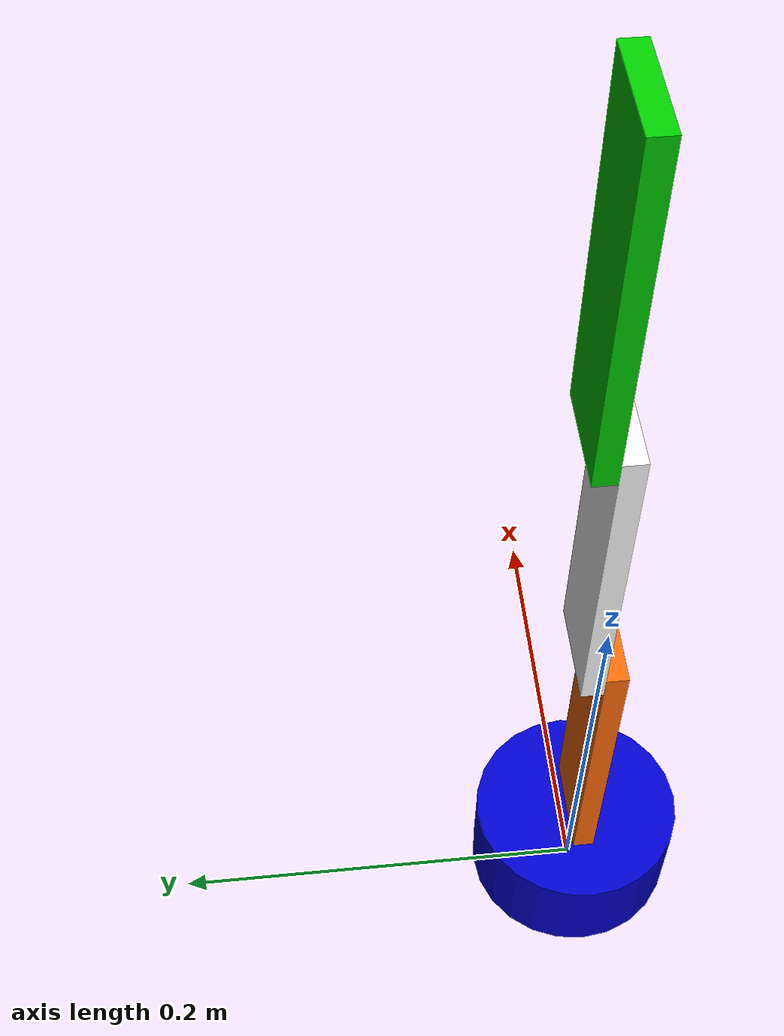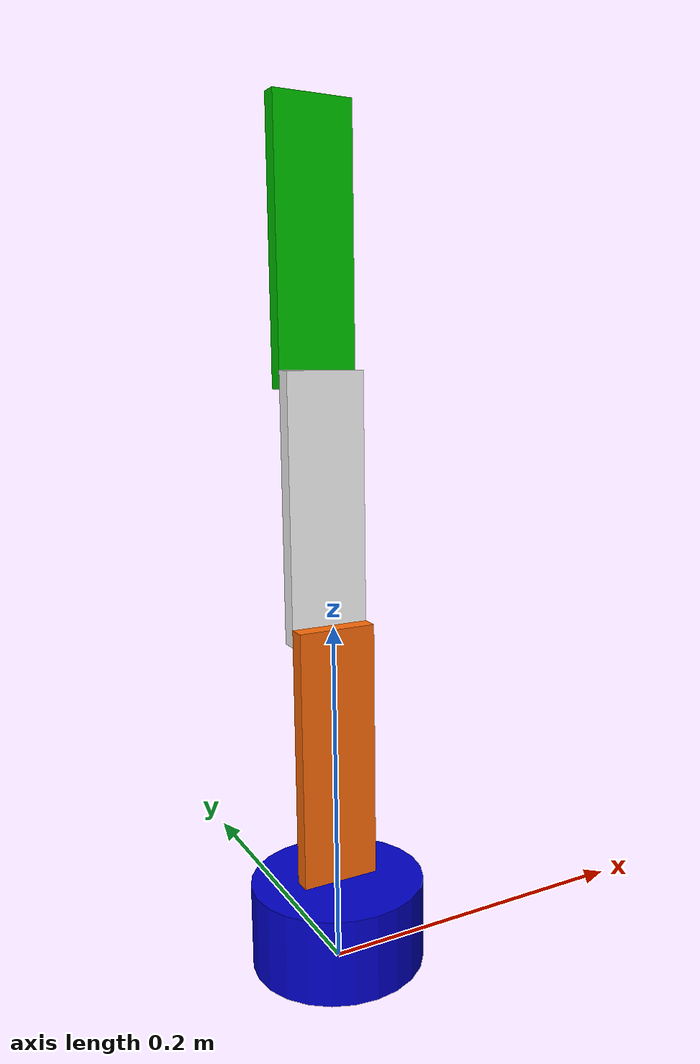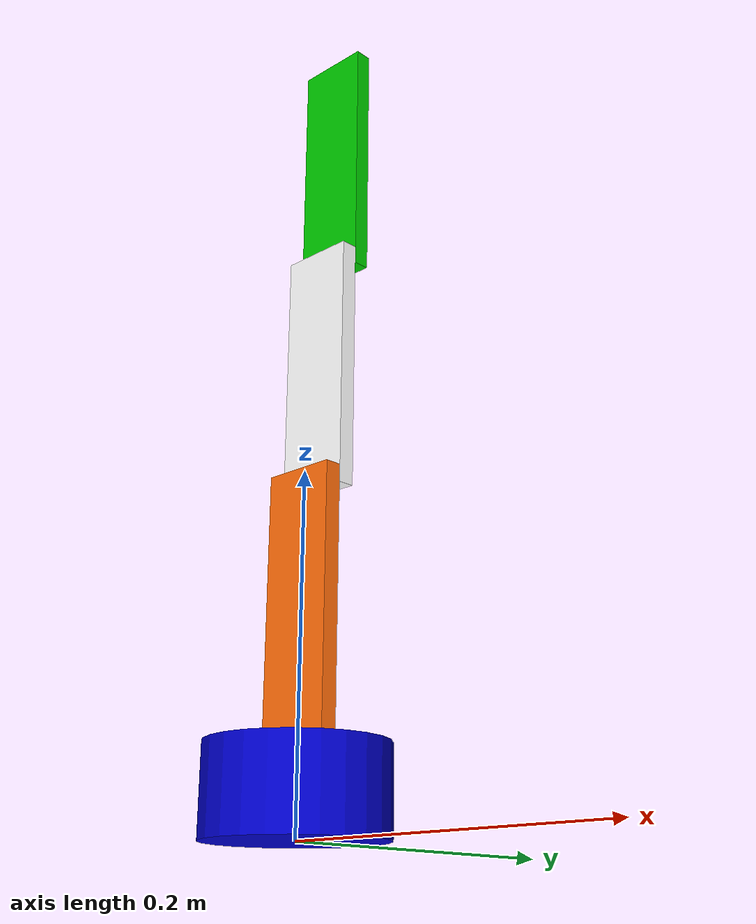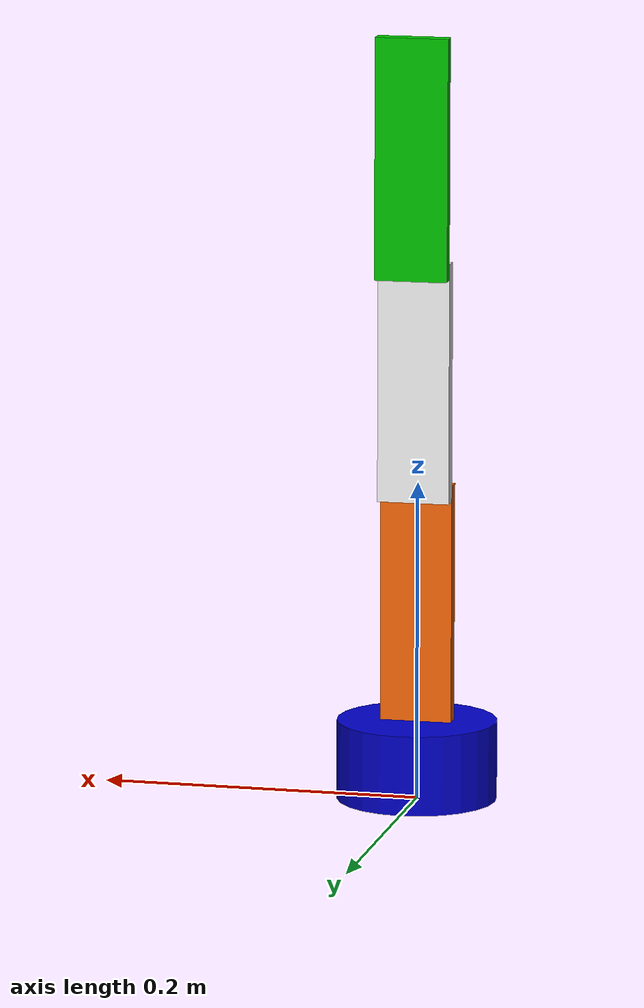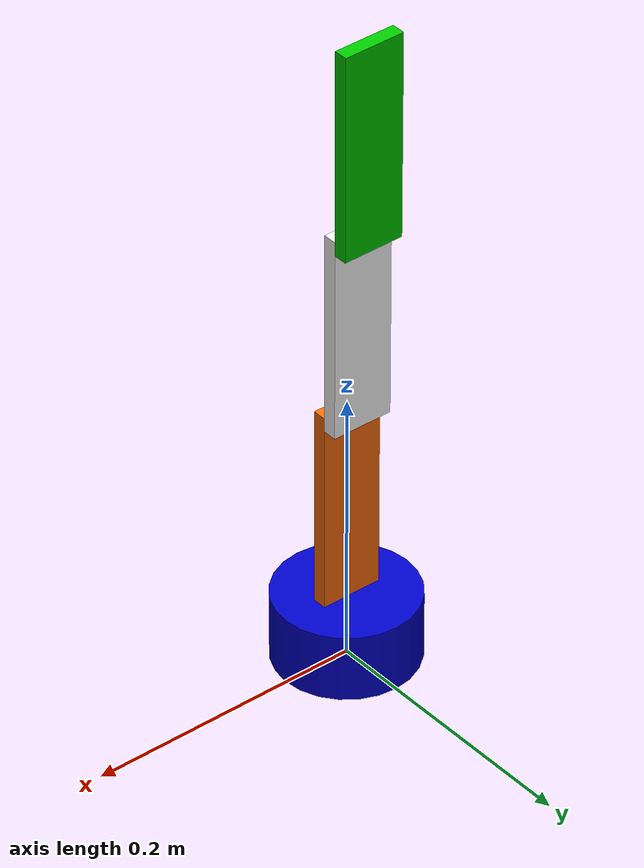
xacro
<?xml version="1.0" encoding="UTF-8"?>
<robot xmlns:xacro="http://www.ros.org/wiki/xacro" name="arduino_arm">

    <!-- Includes -->
    <xacro:include filename='$(find arduino_arm)/urdf/macros.xacro' />
    <xacro:include filename="$(find arduino_arm)/urdf/arduino_arm_properties.xacro" />
    <xacro:include filename="$(find arduino_arm)/urdf/materials.xacro" />
    <xacro:include filename="$(find arduino_arm)/urdf/gazebo_properties.xacro" />
    <xacro:include filename="$(find arduino_arm)/urdf/gazebo_plugins.xacro" />

    <link name='world' />
    <joint name="fixed" type="fixed">
        <parent link="world" />
        <child link="base_link" />
    </joint>

    <!-- Base Link -->
    <link name="base_link">
        <collision>
            <origin xyz="0 0 ${base_height/2}" rpy="0 0 0" />
            <geometry>
                <cylinder radius="${base_radius}" length="${base_height}" />
            </geometry>

        </collision>

        <visual>
            <origin xyz="0 0 ${base_height/2}" rpy="0 0 0" />
            <geometry>
                <cylinder radius="${base_radius}" length="${base_height}" />
            </geometry>

            <material name="blue" />

        </visual>

        <inertial>
            <origin xyz="0 0 ${base_height/2}" rpy="0 0 0" />
            <mass value="${mass}" />
            <xacro:box_inertia mass="${mass}" width="${width}" height="${height1}" />
        </inertial>
    </link>

    <joint name="base_link1_joint" type="revolute">
        <origin xyz="0 0 ${base_height}" rpy="0 0 0" />
        <parent link="base_link" />
        <child link="link1" />
        <axis xyz="0 0 1" />

        <limit effort="1000" velocity="0.5" lower="-${PI/2}" upper="${PI/2}" />
    </joint>

    <!-- Link 1 -->
    <link name="link1">
        <collision>
            <origin xyz="0 0 ${height1/2}" rpy="0 0 0" />
            <geometry>
                <box size="${width} ${width1} ${height1}" />
            </geometry>
        </collision>

        <visual>
            <origin xyz="0 0 ${height1/2}" rpy="0 0 0" />
            <geometry>
                <box size="${width} ${width1} ${height1}" />
            </geometry>
            <material name="orange" />
        </visual>

        <inertial>
            <origin xyz="0 0 ${height1/2}" rpy="0 0 0" />
            <mass value="${mass}" />
            <xacro:box_inertia mass="${mass}" width="${width}" height="${height1}" />
        </inertial>

    </link>

    <joint name="link1_link2_joint" type="revolute">
        <origin xyz="0 ${width1} ${height1 - axel_offset}" rpy="0 0 0" />
        <child link="link2" />
        <parent link="link1" />
        <axis xyz="0 1 0" />

        <limit effort="1000" velocity="0.5" lower="-${PI/2}" upper="${PI/2}" />
    </joint>

    <!-- Link 2 -->
    <link name="link2">
        <collision>
            <origin xyz="0 0 ${height2/2}" rpy="0 0 0" />
            <geometry>
                <box size="${width} ${width1} ${height2}" />
            </geometry>
        </collision>

        <visual>
            <origin xyz="0 0 ${height2/2}" rpy="0 0 0" />
            <geometry>
                <box size="${width} ${width1} ${height2}" />
            </geometry>
            <material name="white" />
        </visual>

        <inertial>
            <origin xyz="0 0 ${height2/2}" rpy="0 0 0" />
            <mass value="${mass}" />
            <xacro:box_inertia mass="${mass}" width="${width}" height="${height2}" />
        </inertial>
    </link>

    <joint name="link2_link3_joint" type="revolute">
        <origin xyz="0 ${width1} ${height2 - axel_offset}" rpy="0 0 0" />
        <child link="link3" />
        <parent link="link2" />
        <axis xyz="0 1 0" />

        <limit effort="1000" velocity="0.5" lower="-${PI/2}" upper="${PI/2}" />
    </joint>

    <!-- Link 3 -->
    <link name="link3">
        <collision>
            <origin xyz="0 0 ${height3/2}" rpy="0 0 0" />
            <geometry>
                <box size="${width} ${width1} ${height3}" />
            </geometry>
        </collision>

        <visual>
            <origin xyz="0 0 ${height3/2}" rpy="0 0 0" />
            <geometry>
                <box size="${width} ${width1} ${height3}" />
            </geometry>
            <material name="green" />
        </visual>

        <inertial>
            <origin xyz="0 0 ${height3/2}" rpy="0 0 0" />
            <mass value="${mass}" />
            <xacro:box_inertia mass="${mass}" width="${width}" height="${height3}" />
        </inertial>
    </link>

</robot>

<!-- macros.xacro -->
<robot xmlns:xacro="http://www.ros.org/wiki/xacro" name="arduino_arm">

<!-- Macros -->
    <xacro:macro name="box_inertia" params="mass width height">
        <inertia
        ixx="${mass / 12.0 * (width*width + height*height)}"
        ixy="0.0"
        ixz="0.0"
        iyy="${mass / 12.0 * (height*height + width*width)}"
        iyz="0.0"
        izz="${mass / 12.0 * (width*width + width*width)}" />
    </xacro:macro>

</robot>

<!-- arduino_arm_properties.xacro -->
<robot xmlns:xacro="http://www.ros.org/wiki/xacro" name="arduino_arm">

    <!-- Constants for robot dimensions -->
    <xacro:property name="PI" value="3.1415926535897931" />
    <xacro:property name="mass" value="1" /> <!-- arbitrary value for mass -->
    <xacro:property name="width" value="0.045" /> <!-- Square dimensions (widthxwidth) of beams -->
    <xacro:property name="width1" value="0.01"/>
    <xacro:property name="base_height" value="0.05" /> <!-- Base Link -->
    <xacro:property name="base_radius" value="0.05"/>
    <xacro:property name="height1" value="0.15" /> <!-- Link 1 -->
    <xacro:property name="height2" value="0.15" /> <!-- Link 2 -->
    <xacro:property name="height3" value="0.15" /> <!-- Link 3 -->
    <xacro:property name="height4" value="0.15" /> <!-- Link 4 -->
    <xacro:property name="camera_link" value="0.05" /> <!-- Size of square 'camera' box -->
    <xacro:property name="axel_offset" value="0.01" /> <!-- Space btw top of beam and the each joint -->

</robot>

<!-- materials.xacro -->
<robot xmlns:xacro="http://www.ros.org/wiki/xacro" name="arduino_arm">

    <material name="black">
        <color rgba="0.0 0.0 0.0 1.0" />
    </material>

    <material name="blue">
        <color rgba="0.0 0.0 0.8 1.0" />
    </material>

    <material name="green">
        <color rgba="0.0 0.8 0.0 1.0" />
    </material>

    <material name="grey">
        <color rgba="0.2 0.2 0.2 1.0" />
    </material>

    <material name="orange">
        <color rgba="${255/255} ${108/255} ${10/255} 1.0" />
    </material>

    <material name="brown">
        <color rgba="${222/255} ${207/255} ${195/255} 1.0" />
    </material>

    <material name="red">
        <color rgba="0.8 0.0 0.0 1.0" />
    </material>

    <material name="white">
        <color rgba="1.0 1.0 1.0 1.0" />
    </material>

</robot>
